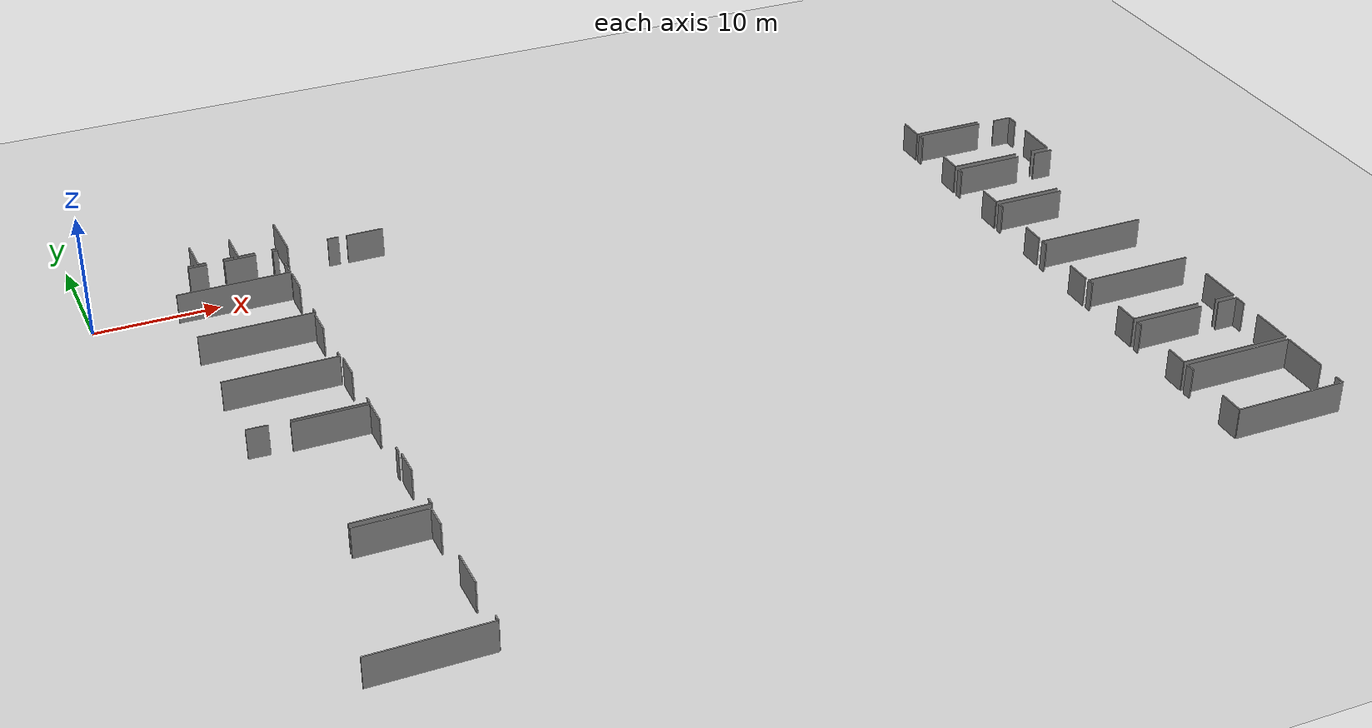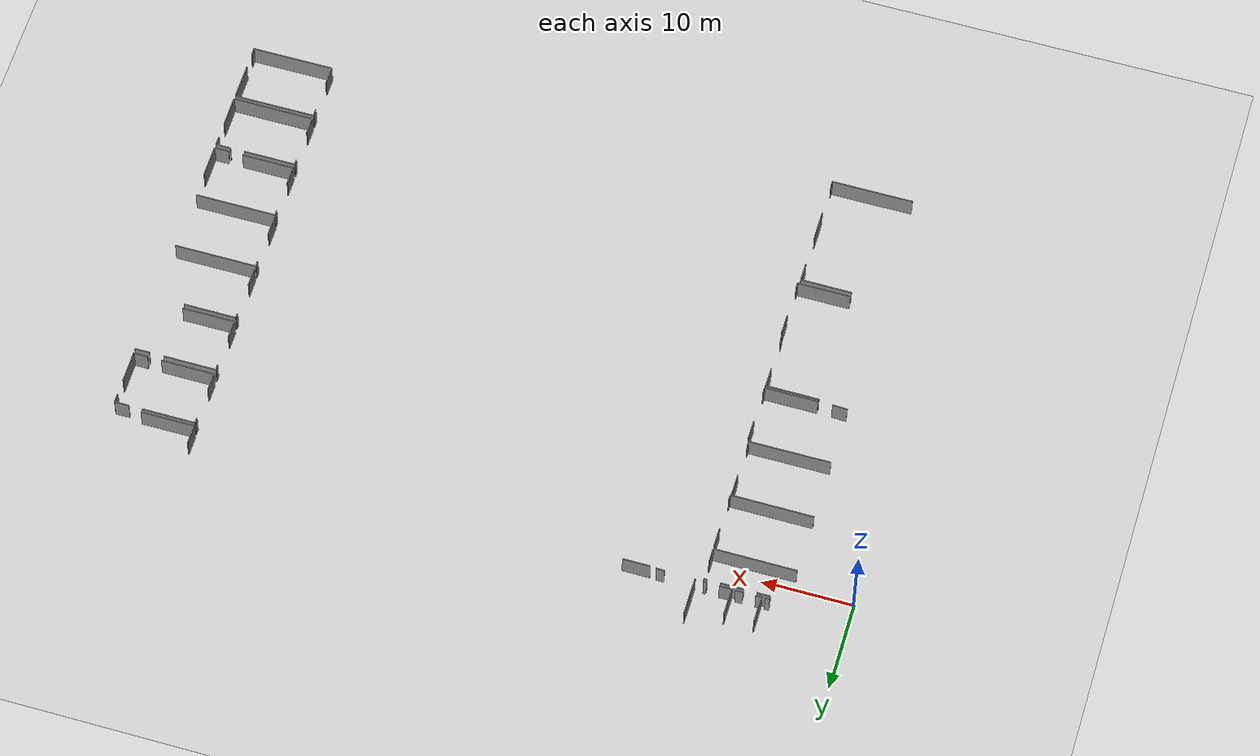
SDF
<sdf version="1.6">
 <world name="default">
  <model name="ground_plane">
   <static>1</static>
   <link name="link">
    <collision name="collision">
     <geometry><plane><normal>0 0 1</normal><size>100 100</size></plane></geometry>
     <surface><friction><ode><mu>100</mu><mu2>50</mu2></ode></friction></surface>
    </collision>
    <visual name="visual">
     <cast_shadows>0</cast_shadows>
     <geometry><plane><normal>0 0 1</normal><size>100 100</size></plane></geometry>
     <material>
      <script><uri>file://media/materials/scripts/gazebo.material</uri><name>Gazebo/Grey</name></script>
     </material>
    </visual>
   </link>
  </model>
  <model name="0510035741_A_40_1_104">
   <static>1</static>
   <link name="Wall_220">
    <collision name="Wall_220_Collision">
     <geometry><box><size>0.914904020167 0.1 2.5</size></box></geometry>
     <pose>0.457452010084 0 1.25 0 0 0</pose>
    </collision>
    <visual name="Wall_220_Visual">
     <pose>0.457452010084 0 1.25 0 0 0</pose>
     <geometry><box><size>0.914904020167 0.1 2.5</size></box></geometry>
     <material>
      <script><uri>file://media/materials/scripts/gazebo.material</uri><name>Gazebo/Grey</name></script>
      <ambient>1 1 1 1</ambient>
     </material>
    </visual>
    <pose>114.620811399 -46.7660225678 0 0 0 3.14159265359</pose>
   </link>
   <link name="Wall_221">
    <collision name="Wall_221_Collision">
     <geometry><box><size>4.16608987751 0.1 2.5</size></box></geometry>
     <pose>2.08304493875 0 1.25 0 0 0</pose>
    </collision>
    <visual name="Wall_221_Visual">
     <pose>2.08304493875 0 1.25 0 0 0</pose>
     <geometry><box><size>4.16608987751 0.1 2.5</size></box></geometry>
     <material>
      <script><uri>file://media/materials/scripts/gazebo.material</uri><name>Gazebo/Grey</name></script>
      <ambient>1 1 1 1</ambient>
     </material>
    </visual>
    <pose>110.407223729 -46.7660225678 0 0 0 1.57079632679</pose>
   </link>
   <link name="Wall_317">
    <collision name="Wall_317_Collision">
     <geometry><box><size>3.02842886894 0.1 2.5</size></box></geometry>
     <pose>1.51421443447 0 1.25 0 0 0</pose>
    </collision>
    <visual name="Wall_317_Visual">
     <pose>1.51421443447 0 1.25 0 0 0</pose>
     <geometry><box><size>3.02842886894 0.1 2.5</size></box></geometry>
     <material>
      <script><uri>file://media/materials/scripts/gazebo.material</uri><name>Gazebo/Grey</name></script>
      <ambient>1 1 1 1</ambient>
     </material>
    </visual>
    <pose>118.298969399 -46.8386662518 0 0 0 3.14142491057</pose>
   </link>
   <link name="Wall_360">
    <collision name="Wall_360_Collision">
     <geometry><box><size>1.46481162807 0.1 2.5</size></box></geometry>
     <pose>0.732405814035 0 1.25 0 0 0</pose>
    </collision>
    <visual name="Wall_360_Visual">
     <pose>0.732405814035 0 1.25 0 0 0</pose>
     <geometry><box><size>1.46481162807 0.1 2.5</size></box></geometry>
     <material>
      <script><uri>file://media/materials/scripts/gazebo.material</uri><name>Gazebo/Grey</name></script>
      <ambient>1 1 1 1</ambient>
     </material>
    </visual>
    <pose>102.339202824 -47.000463548 0 0 0 0.0</pose>
   </link>
   <link name="Wall_361">
    <collision name="Wall_361_Collision">
     <geometry><box><size>2.53821095878 0.1 2.5</size></box></geometry>
     <pose>1.26910547939 0 1.25 0 0 0</pose>
    </collision>
    <visual name="Wall_361_Visual">
     <pose>1.26910547939 0 1.25 0 0 0</pose>
     <geometry><box><size>2.53821095878 0.1 2.5</size></box></geometry>
     <material>
      <script><uri>file://media/materials/scripts/gazebo.material</uri><name>Gazebo/Grey</name></script>
      <ambient>1 1 1 1</ambient>
     </material>
    </visual>
    <pose>105.205834355 -47.000463548 0 0 0 0.0</pose>
   </link>
   <link name="Wall_362">
    <collision name="Wall_362_Collision">
     <geometry><box><size>0.404112242112 0.1 2.5</size></box></geometry>
     <pose>0.202056121056 0 1.25 0 0 0</pose>
    </collision>
    <visual name="Wall_362_Visual">
     <pose>0.202056121056 0 1.25 0 0 0</pose>
     <geometry><box><size>0.404112242112 0.1 2.5</size></box></geometry>
     <material>
      <script><uri>file://media/materials/scripts/gazebo.material</uri><name>Gazebo/Grey</name></script>
      <ambient>1 1 1 1</ambient>
     </material>
    </visual>
    <pose>109.145865215 -47.000463548 0 0 0 0.0</pose>
   </link>
   <link name="Wall_363">
    <collision name="Wall_363_Collision">
     <geometry><box><size>1.64108686127 0.1 2.5</size></box></geometry>
     <pose>0.820543430636 0 1.25 0 0 0</pose>
    </collision>
    <visual name="Wall_363_Visual">
     <pose>0.820543430636 0 1.25 0 0 0</pose>
     <geometry><box><size>1.64108686127 0.1 2.5</size></box></geometry>
     <material>
      <script><uri>file://media/materials/scripts/gazebo.material</uri><name>Gazebo/Grey</name></script>
      <ambient>1 1 1 1</ambient>
     </material>
    </visual>
    <pose>109.549977458 -49.0896044602 0 0 0 -1.57079632679</pose>
   </link>
   <link name="Wall_364">
    <collision name="Wall_364_Collision">
     <geometry><box><size>9.07208094012 0.1 2.5</size></box></geometry>
     <pose>4.53604047006 0 1.25 0 0 0</pose>
    </collision>
    <visual name="Wall_364_Visual">
     <pose>4.53604047006 0 1.25 0 0 0</pose>
     <geometry><box><size>9.07208094012 0.1 2.5</size></box></geometry>
     <material>
      <script><uri>file://media/materials/scripts/gazebo.material</uri><name>Gazebo/Grey</name></script>
      <ambient>1 1 1 1</ambient>
     </material>
    </visual>
    <pose>109.549977458 -50.7306913215 0 0 0 3.14086470904</pose>
   </link>
   <link name="Wall_368">
    <collision name="Wall_368_Collision">
     <geometry><box><size>0.477009925007 0.1 2.5</size></box></geometry>
     <pose>0.238504962503 0 1.25 0 0 0</pose>
    </collision>
    <visual name="Wall_368_Visual">
     <pose>0.238504962503 0 1.25 0 0 0</pose>
     <geometry><box><size>0.477009925007 0.1 2.5</size></box></geometry>
     <material>
      <script><uri>file://media/materials/scripts/gazebo.material</uri><name>Gazebo/Grey</name></script>
      <ambient>1 1 1 1</ambient>
     </material>
    </visual>
    <pose>102.821800725 -46.6921088893 0 0 0 3.14159265359</pose>
   </link>
   <link name="Wall_370">
    <collision name="Wall_370_Collision">
     <geometry><box><size>2.96340510919 0.1 2.5</size></box></geometry>
     <pose>1.48170255459 0 1.25 0 0 0</pose>
    </collision>
    <visual name="Wall_370_Visual">
     <pose>1.48170255459 0 1.25 0 0 0</pose>
     <geometry><box><size>2.96340510919 0.1 2.5</size></box></geometry>
     <material>
      <script><uri>file://media/materials/scripts/gazebo.material</uri><name>Gazebo/Grey</name></script>
      <ambient>1 1 1 1</ambient>
     </material>
    </visual>
    <pose>103.204831059 -46.6669629987 0 0 0 1.57079632679</pose>
   </link>
   <link name="Wall_373">
    <collision name="Wall_373_Collision">
     <geometry><box><size>0.828544395832 0.1 2.5</size></box></geometry>
     <pose>0.414272197916 0 1.25 0 0 0</pose>
    </collision>
    <visual name="Wall_373_Visual">
     <pose>0.414272197916 0 1.25 0 0 0</pose>
     <geometry><box><size>0.828544395832 0.1 2.5</size></box></geometry>
     <material>
      <script><uri>file://media/materials/scripts/gazebo.material</uri><name>Gazebo/Grey</name></script>
      <ambient>1 1 1 1</ambient>
     </material>
    </visual>
    <pose>106.030060769 -46.6481670805 0 0 0 3.14159265359</pose>
   </link>
   <link name="Wall_374">
    <collision name="Wall_374_Collision">
     <geometry><box><size>0.640353128012 0.1 2.5</size></box></geometry>
     <pose>0.320176564006 0 1.25 0 0 0</pose>
    </collision>
    <visual name="Wall_374_Visual">
     <pose>0.320176564006 0 1.25 0 0 0</pose>
     <geometry><box><size>0.640353128012 0.1 2.5</size></box></geometry>
     <material>
      <script><uri>file://media/materials/scripts/gazebo.material</uri><name>Gazebo/Grey</name></script>
      <ambient>1 1 1 1</ambient>
     </material>
    </visual>
    <pose>103.844908275 -46.6481670805 0 0 0 -3.11223601044</pose>
   </link>
   <link name="Wall_375">
    <collision name="Wall_375_Collision">
     <geometry><box><size>2.97940703958 0.1 2.5</size></box></geometry>
     <pose>1.48970351979 0 1.25 0 0 0</pose>
    </collision>
    <visual name="Wall_375_Visual">
     <pose>1.48970351979 0 1.25 0 0 0</pose>
     <geometry><box><size>2.97940703958 0.1 2.5</size></box></geometry>
     <material>
      <script><uri>file://media/materials/scripts/gazebo.material</uri><name>Gazebo/Grey</name></script>
      <ambient>1 1 1 1</ambient>
     </material>
    </visual>
    <pose>106.423251059 -46.6903308971 0 0 0 1.57079632679</pose>
   </link>
   <link name="Wall_378">
    <collision name="Wall_378_Collision">
     <geometry><box><size>0.334262545958 0.1 2.5</size></box></geometry>
     <pose>0.167131272979 0 1.25 0 0 0</pose>
    </collision>
    <visual name="Wall_378_Visual">
     <pose>0.167131272979 0 1.25 0 0 0</pose>
     <geometry><box><size>0.334262545958 0.1 2.5</size></box></geometry>
     <material>
      <script><uri>file://media/materials/scripts/gazebo.material</uri><name>Gazebo/Grey</name></script>
      <ambient>1 1 1 1</ambient>
     </material>
    </visual>
    <pose>109.478857767 -46.6519770639 0 0 0 3.14159265359</pose>
   </link>
   <link name="Wall_379">
    <collision name="Wall_379_Collision">
     <geometry><box><size>1.33683848524 0.1 2.5</size></box></geometry>
     <pose>0.668419242621 0 1.25 0 0 0</pose>
    </collision>
    <visual name="Wall_379_Visual">
     <pose>0.668419242621 0 1.25 0 0 0</pose>
     <geometry><box><size>1.33683848524 0.1 2.5</size></box></geometry>
     <material>
      <script><uri>file://media/materials/scripts/gazebo.material</uri><name>Gazebo/Grey</name></script>
      <ambient>1 1 1 1</ambient>
     </material>
    </visual>
    <pose>107.759539246 -46.6519770639 0 0 0 -3.1128987634</pose>
   </link>
   <link name="Wall_383">
    <collision name="Wall_383_Collision">
     <geometry><box><size>2.16457858408 0.1 2.5</size></box></geometry>
     <pose>1.08228929204 0 1.25 0 0 0</pose>
    </collision>
    <visual name="Wall_383_Visual">
     <pose>1.08228929204 0 1.25 0 0 0</pose>
     <geometry><box><size>2.16457858408 0.1 2.5</size></box></geometry>
     <material>
      <script><uri>file://media/materials/scripts/gazebo.material</uri><name>Gazebo/Grey</name></script>
      <ambient>1 1 1 1</ambient>
     </material>
    </visual>
    <pose>109.57461535 -51.0639378719 0 0 0 -1.57079632679</pose>
   </link>
   <link name="Wall_384">
    <collision name="Wall_384_Collision">
     <geometry><box><size>0.574291501832 0.1 2.5</size></box></geometry>
     <pose>0.287145750916 0 1.25 0 0 0</pose>
    </collision>
    <visual name="Wall_384_Visual">
     <pose>0.287145750916 0 1.25 0 0 0</pose>
     <geometry><box><size>0.574291501832 0.1 2.5</size></box></geometry>
     <material>
      <script><uri>file://media/materials/scripts/gazebo.material</uri><name>Gazebo/Grey</name></script>
      <ambient>1 1 1 1</ambient>
     </material>
    </visual>
    <pose>109.57461535 -56.8728926029 0 0 0 -1.57079632679</pose>
   </link>
   <link name="Wall_385">
    <collision name="Wall_385_Collision">
     <geometry><box><size>9.10993587634 0.1 2.5</size></box></geometry>
     <pose>4.55496793817 0 1.25 0 0 0</pose>
    </collision>
    <visual name="Wall_385_Visual">
     <pose>4.55496793817 0 1.25 0 0 0</pose>
     <geometry><box><size>9.10993587634 0.1 2.5</size></box></geometry>
     <material>
      <script><uri>file://media/materials/scripts/gazebo.material</uri><name>Gazebo/Grey</name></script>
      <ambient>1 1 1 1</ambient>
     </material>
    </visual>
    <pose>109.57461535 -57.4471841047 0 0 0 3.14000340606</pose>
   </link>
   <link name="Wall_389">
    <collision name="Wall_389_Collision">
     <geometry><box><size>2.14248068021 0.1 2.5</size></box></geometry>
     <pose>1.0712403401 0 1.25 0 0 0</pose>
    </collision>
    <visual name="Wall_389_Visual">
     <pose>1.0712403401 0 1.25 0 0 0</pose>
     <geometry><box><size>2.14248068021 0.1 2.5</size></box></geometry>
     <material>
      <script><uri>file://media/materials/scripts/gazebo.material</uri><name>Gazebo/Grey</name></script>
      <ambient>1 1 1 1</ambient>
     </material>
    </visual>
    <pose>109.464125831 -57.8446923756 0 0 0 -1.57079632679</pose>
   </link>
   <link name="Wall_390">
    <collision name="Wall_390_Collision">
     <geometry><box><size>0.551177602377 0.1 2.5</size></box></geometry>
     <pose>0.275588801189 0 1.25 0 0 0</pose>
    </collision>
    <visual name="Wall_390_Visual">
     <pose>0.275588801189 0 1.25 0 0 0</pose>
     <geometry><box><size>0.551177602377 0.1 2.5</size></box></geometry>
     <material>
      <script><uri>file://media/materials/scripts/gazebo.material</uri><name>Gazebo/Grey</name></script>
      <ambient>1 1 1 1</ambient>
     </material>
    </visual>
    <pose>109.464125831 -63.7123208514 0 0 0 -1.57079632679</pose>
   </link>
   <link name="Wall_391">
    <collision name="Wall_391_Collision">
     <geometry><box><size>8.98219266717 0.1 2.5</size></box></geometry>
     <pose>4.49109633358 0 1.25 0 0 0</pose>
    </collision>
    <visual name="Wall_391_Visual">
     <pose>4.49109633358 0 1.25 0 0 0</pose>
     <geometry><box><size>8.98219266717 0.1 2.5</size></box></geometry>
     <material>
      <script><uri>file://media/materials/scripts/gazebo.material</uri><name>Gazebo/Grey</name></script>
      <ambient>1 1 1 1</ambient>
     </material>
    </visual>
    <pose>109.464125831 -64.2634984538 0 0 0 -3.13901934818</pose>
   </link>
   <link name="Wall_395">
    <collision name="Wall_395_Collision">
     <geometry><box><size>2.26617814213 0.1 2.5</size></box></geometry>
     <pose>1.13308907106 0 1.25 0 0 0</pose>
    </collision>
    <visual name="Wall_395_Visual">
     <pose>1.13308907106 0 1.25 0 0 0</pose>
     <geometry><box><size>2.26617814213 0.1 2.5</size></box></geometry>
     <material>
      <script><uri>file://media/materials/scripts/gazebo.material</uri><name>Gazebo/Grey</name></script>
      <ambient>1 1 1 1</ambient>
     </material>
    </visual>
    <pose>109.600523238 -64.5909030296 0 0 0 -1.57079632679</pose>
   </link>
   <link name="Wall_396">
    <collision name="Wall_396_Collision">
     <geometry><box><size>0.614423327259 0.1 2.5</size></box></geometry>
     <pose>0.307211663629 0 1.25 0 0 0</pose>
    </collision>
    <visual name="Wall_396_Visual">
     <pose>0.307211663629 0 1.25 0 0 0</pose>
     <geometry><box><size>0.614423327259 0.1 2.5</size></box></geometry>
     <material>
      <script><uri>file://media/materials/scripts/gazebo.material</uri><name>Gazebo/Grey</name></script>
      <ambient>1 1 1 1</ambient>
     </material>
    </visual>
    <pose>109.600523238 -70.5062832977 0 0 0 -1.57079632679</pose>
   </link>
   <link name="Wall_397">
    <collision name="Wall_397_Collision">
     <geometry><box><size>5.87220045593 0.1 2.5</size></box></geometry>
     <pose>2.93610022796 0 1.25 0 0 0</pose>
    </collision>
    <visual name="Wall_397_Visual">
     <pose>2.93610022796 0 1.25 0 0 0</pose>
     <geometry><box><size>5.87220045593 0.1 2.5</size></box></geometry>
     <material>
      <script><uri>file://media/materials/scripts/gazebo.material</uri><name>Gazebo/Grey</name></script>
      <ambient>1 1 1 1</ambient>
     </material>
    </visual>
    <pose>109.600523238 -71.1207066249 0 0 0 3.14159265359</pose>
   </link>
   <link name="Wall_398">
    <collision name="Wall_398_Collision">
     <geometry><box><size>1.64725787728 0.1 2.5</size></box></geometry>
     <pose>0.823628938642 0 1.25 0 0 0</pose>
    </collision>
    <visual name="Wall_398_Visual">
     <pose>0.823628938642 0 1.25 0 0 0</pose>
     <geometry><box><size>1.64725787728 0.1 2.5</size></box></geometry>
     <material>
      <script><uri>file://media/materials/scripts/gazebo.material</uri><name>Gazebo/Grey</name></script>
      <ambient>1 1 1 1</ambient>
     </material>
    </visual>
    <pose>102.131431728 -71.1207066249 0 0 0 3.10519460209</pose>
   </link>
   <link name="Wall_400">
    <collision name="Wall_400_Collision">
     <geometry><box><size>0.551939599063 0.1 2.5</size></box></geometry>
     <pose>0.275969799531 0 1.25 0 0 0</pose>
    </collision>
    <visual name="Wall_400_Visual">
     <pose>0.275969799531 0 1.25 0 0 0</pose>
     <geometry><box><size>0.551939599063 0.1 2.5</size></box></geometry>
     <material>
      <script><uri>file://media/materials/scripts/gazebo.material</uri><name>Gazebo/Grey</name></script>
      <ambient>1 1 1 1</ambient>
     </material>
    </visual>
    <pose>109.552517447 -77.9436249452 0 0 0 1.57079632679</pose>
   </link>
   <link name="Wall_401">
    <collision name="Wall_401_Collision">
     <geometry><box><size>2.23087229571 0.1 2.5</size></box></geometry>
     <pose>1.11543614785 0 1.25 0 0 0</pose>
    </collision>
    <visual name="Wall_401_Visual">
     <pose>1.11543614785 0 1.25 0 0 0</pose>
     <geometry><box><size>2.23087229571 0.1 2.5</size></box></geometry>
     <material>
      <script><uri>file://media/materials/scripts/gazebo.material</uri><name>Gazebo/Grey</name></script>
      <ambient>1 1 1 1</ambient>
     </material>
    </visual>
    <pose>109.552517447 -73.614721776 0 0 0 1.57079632679</pose>
   </link>
   <link name="Wall_402">
    <collision name="Wall_402_Collision">
     <geometry><box><size>5.87499444377 0.1 2.5</size></box></geometry>
     <pose>2.93749722189 0 1.25 0 0 0</pose>
    </collision>
    <visual name="Wall_402_Visual">
     <pose>2.93749722189 0 1.25 0 0 0</pose>
     <geometry><box><size>5.87499444377 0.1 2.5</size></box></geometry>
     <material>
      <script><uri>file://media/materials/scripts/gazebo.material</uri><name>Gazebo/Grey</name></script>
      <ambient>1 1 1 1</ambient>
     </material>
    </visual>
    <pose>109.552517447 -71.3838494803 0 0 0 3.14159265359</pose>
   </link>
   <link name="Wall_409">
    <collision name="Wall_409_Collision">
     <geometry><box><size>2.18642248906 0.1 2.5</size></box></geometry>
     <pose>1.09321124453 0 1.25 0 0 0</pose>
    </collision>
    <visual name="Wall_409_Visual">
     <pose>1.09321124453 0 1.25 0 0 0</pose>
     <geometry><box><size>2.18642248906 0.1 2.5</size></box></geometry>
     <material>
      <script><uri>file://media/materials/scripts/gazebo.material</uri><name>Gazebo/Grey</name></script>
      <ambient>1 1 1 1</ambient>
     </material>
    </visual>
    <pose>109.663006966 -78.3192893111 0 0 0 -1.57079632679</pose>
   </link>
   <link name="Wall_410">
    <collision name="Wall_410_Collision">
     <geometry><box><size>0.61848730958 0.1 2.5</size></box></geometry>
     <pose>0.30924365479 0 1.25 0 0 0</pose>
    </collision>
    <visual name="Wall_410_Visual">
     <pose>0.30924365479 0 1.25 0 0 0</pose>
     <geometry><box><size>0.61848730958 0.1 2.5</size></box></geometry>
     <material>
      <script><uri>file://media/materials/scripts/gazebo.material</uri><name>Gazebo/Grey</name></script>
      <ambient>1 1 1 1</ambient>
     </material>
    </visual>
    <pose>109.663006966 -84.1279900432 0 0 0 -1.57079632679</pose>
   </link>
   <link name="Wall_411">
    <collision name="Wall_411_Collision">
     <geometry><box><size>5.84349858078 0.1 2.5</size></box></geometry>
     <pose>2.92174929039 0 1.25 0 0 0</pose>
    </collision>
    <visual name="Wall_411_Visual">
     <pose>2.92174929039 0 1.25 0 0 0</pose>
     <geometry><box><size>5.84349858078 0.1 2.5</size></box></geometry>
     <material>
      <script><uri>file://media/materials/scripts/gazebo.material</uri><name>Gazebo/Grey</name></script>
      <ambient>1 1 1 1</ambient>
     </material>
    </visual>
    <pose>109.663006966 -84.7464773528 0 0 0 3.14159265359</pose>
   </link>
   <link name="Wall_416">
    <collision name="Wall_416_Collision">
     <geometry><box><size>5.66163537189 0.1 2.5</size></box></geometry>
     <pose>2.83081768594 0 1.25 0 0 0</pose>
    </collision>
    <visual name="Wall_416_Visual">
     <pose>2.83081768594 0 1.25 0 0 0</pose>
     <geometry><box><size>5.66163537189 0.1 2.5</size></box></geometry>
     <material>
      <script><uri>file://media/materials/scripts/gazebo.material</uri><name>Gazebo/Grey</name></script>
      <ambient>1 1 1 1</ambient>
     </material>
    </visual>
    <pose>103.792076504 -85.2565071342 0 0 0 0.0</pose>
   </link>
   <link name="Wall_417">
    <collision name="Wall_417_Collision">
     <geometry><box><size>2.03732513764 0.1 2.5</size></box></geometry>
     <pose>1.01866256882 0 1.25 0 0 0</pose>
    </collision>
    <visual name="Wall_417_Visual">
     <pose>1.01866256882 0 1.25 0 0 0</pose>
     <geometry><box><size>2.03732513764 0.1 2.5</size></box></geometry>
     <material>
      <script><uri>file://media/materials/scripts/gazebo.material</uri><name>Gazebo/Grey</name></script>
      <ambient>1 1 1 1</ambient>
     </material>
    </visual>
    <pose>109.453711876 -85.2565071342 0 0 0 -1.57079632679</pose>
   </link>
   <link name="Wall_418">
    <collision name="Wall_418_Collision">
     <geometry><box><size>3.17778017666 0.1 2.5</size></box></geometry>
     <pose>1.58889008833 0 1.25 0 0 0</pose>
    </collision>
    <visual name="Wall_418_Visual">
     <pose>1.58889008833 0 1.25 0 0 0</pose>
     <geometry><box><size>3.17778017666 0.1 2.5</size></box></geometry>
     <material>
      <script><uri>file://media/materials/scripts/gazebo.material</uri><name>Gazebo/Grey</name></script>
      <ambient>1 1 1 1</ambient>
     </material>
    </visual>
    <pose>109.453711876 -90.9750382586 0 0 0 -1.57079632679</pose>
   </link>
   <link name="Wall_419">
    <collision name="Wall_419_Collision">
     <geometry><box><size>0.522729726126 0.1 2.5</size></box></geometry>
     <pose>0.261364863063 0 1.25 0 0 0</pose>
    </collision>
    <visual name="Wall_419_Visual">
     <pose>0.261364863063 0 1.25 0 0 0</pose>
     <geometry><box><size>0.522729726126 0.1 2.5</size></box></geometry>
     <material>
      <script><uri>file://media/materials/scripts/gazebo.material</uri><name>Gazebo/Grey</name></script>
      <ambient>1 1 1 1</ambient>
     </material>
    </visual>
    <pose>109.453711876 -97.8416443888 0 0 0 -1.57079632679</pose>
   </link>
   <link name="Wall_420">
    <collision name="Wall_420_Collision">
     <geometry><box><size>9.01446729278 0.1 2.5</size></box></geometry>
     <pose>4.50723364639 0 1.25 0 0 0</pose>
    </collision>
    <visual name="Wall_420_Visual">
     <pose>4.50723364639 0 1.25 0 0 0</pose>
     <geometry><box><size>9.01446729278 0.1 2.5</size></box></geometry>
     <material>
      <script><uri>file://media/materials/scripts/gazebo.material</uri><name>Gazebo/Grey</name></script>
      <ambient>1 1 1 1</ambient>
     </material>
    </visual>
    <pose>109.453711876 -98.364374115 0 0 0 -3.13838049219</pose>
   </link>
   <link name="Wall_476">
    <collision name="Wall_476_Collision">
     <geometry><box><size>2.20750439736 0.1 2.5</size></box></geometry>
     <pose>1.10375219868 0 1.25 0 0 0</pose>
    </collision>
    <visual name="Wall_476_Visual">
     <pose>1.10375219868 0 1.25 0 0 0</pose>
     <geometry><box><size>2.20750439736 0.1 2.5</size></box></geometry>
     <material>
      <script><uri>file://media/materials/scripts/gazebo.material</uri><name>Gazebo/Grey</name></script>
      <ambient>1 1 1 1</ambient>
     </material>
    </visual>
    <pose>166.1609972 -49.2204138912 0 0 0 1.57079632679</pose>
   </link>
   <link name="Wall_482">
    <collision name="Wall_482_Collision">
     <geometry><box><size>5.96187784342 0.1 2.5</size></box></geometry>
     <pose>2.98093892171 0 1.25 0 0 0</pose>
    </collision>
    <visual name="Wall_482_Visual">
     <pose>2.98093892171 0 1.25 0 0 0</pose>
     <geometry><box><size>5.96187784342 0.1 2.5</size></box></geometry>
     <material>
      <script><uri>file://media/materials/scripts/gazebo.material</uri><name>Gazebo/Grey</name></script>
      <ambient>1 1 1 1</ambient>
     </material>
    </visual>
    <pose>172.122859266 -49.2066979509 0 0 0 -3.13929204415</pose>
   </link>
   <link name="Wall_483">
    <collision name="Wall_483_Collision">
     <geometry><box><size>2.0078612658 0.1 2.5</size></box></geometry>
     <pose>1.0039306329 0 1.25 0 0 0</pose>
    </collision>
    <visual name="Wall_483_Visual">
     <pose>1.0039306329 0 1.25 0 0 0</pose>
     <geometry><box><size>2.0078612658 0.1 2.5</size></box></geometry>
     <material>
      <script><uri>file://media/materials/scripts/gazebo.material</uri><name>Gazebo/Grey</name></script>
      <ambient>1 1 1 1</ambient>
     </material>
    </visual>
    <pose>166.187413085 -55.8673109772 0 0 0 1.57079632679</pose>
   </link>
   <link name="Wall_484">
    <collision name="Wall_484_Collision">
     <geometry><box><size>0.606295362615 0.1 2.5</size></box></geometry>
     <pose>0.303147681308 0 1.25 0 0 0</pose>
    </collision>
    <visual name="Wall_484_Visual">
     <pose>0.303147681308 0 1.25 0 0 0</pose>
     <geometry><box><size>0.606295362615 0.1 2.5</size></box></geometry>
     <material>
      <script><uri>file://media/materials/scripts/gazebo.material</uri><name>Gazebo/Grey</name></script>
      <ambient>1 1 1 1</ambient>
     </material>
    </visual>
    <pose>166.187413085 -50.184593697 0 0 0 1.57079632679</pose>
   </link>
   <link name="Wall_485">
    <collision name="Wall_485_Collision">
     <geometry><box><size>5.89734634654 0.1 2.5</size></box></geometry>
     <pose>2.94867317327 0 1.25 0 0 0</pose>
    </collision>
    <visual name="Wall_485_Visual">
     <pose>2.94867317327 0 1.25 0 0 0</pose>
     <geometry><box><size>5.89734634654 0.1 2.5</size></box></geometry>
     <material>
      <script><uri>file://media/materials/scripts/gazebo.material</uri><name>Gazebo/Grey</name></script>
      <ambient>1 1 1 1</ambient>
     </material>
    </visual>
    <pose>166.187413085 -49.5782983344 0 0 0 0.0</pose>
   </link>
   <link name="Wall_486">
    <collision name="Wall_486_Collision">
     <geometry><box><size>1.60247902922 0.1 2.5</size></box></geometry>
     <pose>0.801239514608 0 1.25 0 0 0</pose>
    </collision>
    <visual name="Wall_486_Visual">
     <pose>0.801239514608 0 1.25 0 0 0</pose>
     <geometry><box><size>1.60247902922 0.1 2.5</size></box></geometry>
     <material>
      <script><uri>file://media/materials/scripts/gazebo.material</uri><name>Gazebo/Grey</name></script>
      <ambient>1 1 1 1</ambient>
     </material>
    </visual>
    <pose>173.587924893 -49.5782983344 0 0 0 0.0</pose>
   </link>
   <link name="Wall_487">
    <collision name="Wall_487_Collision">
     <geometry><box><size>1.00786761578 0.1 2.5</size></box></geometry>
     <pose>0.503933807888 0 1.25 0 0 0</pose>
    </collision>
    <visual name="Wall_487_Visual">
     <pose>0.503933807888 0 1.25 0 0 0</pose>
     <geometry><box><size>1.00786761578 0.1 2.5</size></box></geometry>
     <material>
      <script><uri>file://media/materials/scripts/gazebo.material</uri><name>Gazebo/Grey</name></script>
      <ambient>1 1 1 1</ambient>
     </material>
    </visual>
    <pose>175.190403922 -49.5782983344 0 0 0 -1.57079632679</pose>
   </link>
   <link name="Wall_488">
    <collision name="Wall_488_Collision">
     <geometry><box><size>3.54074459776 0.1 2.5</size></box></geometry>
     <pose>1.77037229888 0 1.25 0 0 0</pose>
    </collision>
    <visual name="Wall_488_Visual">
     <pose>1.77037229888 0 1.25 0 0 0</pose>
     <geometry><box><size>3.54074459776 0.1 2.5</size></box></geometry>
     <material>
      <script><uri>file://media/materials/scripts/gazebo.material</uri><name>Gazebo/Grey</name></script>
      <ambient>1 1 1 1</ambient>
     </material>
    </visual>
    <pose>175.190403922 -52.3390123253 0 0 0 -1.57079632679</pose>
   </link>
   <link name="Wall_489">
    <collision name="Wall_489_Collision">
     <geometry><box><size>1.55498123583 0.1 2.5</size></box></geometry>
     <pose>0.777490617916 0 1.25 0 0 0</pose>
    </collision>
    <visual name="Wall_489_Visual">
     <pose>0.777490617916 0 1.25 0 0 0</pose>
     <geometry><box><size>1.55498123583 0.1 2.5</size></box></geometry>
     <material>
      <script><uri>file://media/materials/scripts/gazebo.material</uri><name>Gazebo/Grey</name></script>
      <ambient>1 1 1 1</ambient>
     </material>
    </visual>
    <pose>175.190403922 -55.8797569231 0 0 0 3.14159265359</pose>
   </link>
   <link name="Wall_490">
    <collision name="Wall_490_Collision">
     <geometry><box><size>5.91107538955 0.1 2.5</size></box></geometry>
     <pose>2.95553769477 0 1.25 0 0 0</pose>
    </collision>
    <visual name="Wall_490_Visual">
     <pose>2.95553769477 0 1.25 0 0 0</pose>
     <geometry><box><size>5.91107538955 0.1 2.5</size></box></geometry>
     <material>
      <script><uri>file://media/materials/scripts/gazebo.material</uri><name>Gazebo/Grey</name></script>
      <ambient>1 1 1 1</ambient>
     </material>
    </visual>
    <pose>172.098475372 -55.8797569231 0 0 0 3.13948712215</pose>
   </link>
   <link name="Wall_491">
    <collision name="Wall_491_Collision">
     <geometry><box><size>2.03580114427 0.1 2.5</size></box></geometry>
     <pose>1.01790057213 0 1.25 0 0 0</pose>
    </collision>
    <visual name="Wall_491_Visual">
     <pose>1.01790057213 0 1.25 0 0 0</pose>
     <geometry><box><size>2.03580114427 0.1 2.5</size></box></geometry>
     <material>
      <script><uri>file://media/materials/scripts/gazebo.material</uri><name>Gazebo/Grey</name></script>
      <ambient>1 1 1 1</ambient>
     </material>
    </visual>
    <pose>166.162267194 -62.727821134 0 0 0 1.57079632679</pose>
   </link>
   <link name="Wall_492">
    <collision name="Wall_492_Collision">
     <geometry><box><size>0.576323492993 0.1 2.5</size></box></geometry>
     <pose>0.288161746496 0 1.25 0 0 0</pose>
    </collision>
    <visual name="Wall_492_Visual">
     <pose>0.288161746496 0 1.25 0 0 0</pose>
     <geometry><box><size>0.576323492993 0.1 2.5</size></box></geometry>
     <material>
      <script><uri>file://media/materials/scripts/gazebo.material</uri><name>Gazebo/Grey</name></script>
      <ambient>1 1 1 1</ambient>
     </material>
    </visual>
    <pose>166.162267194 -57.0044640306 0 0 0 1.57079632679</pose>
   </link>
   <link name="Wall_493">
    <collision name="Wall_493_Collision">
     <geometry><box><size>5.83664061061 0.1 2.5</size></box></geometry>
     <pose>2.91832030531 0 1.25 0 0 0</pose>
    </collision>
    <visual name="Wall_493_Visual">
     <pose>2.91832030531 0 1.25 0 0 0</pose>
     <geometry><box><size>5.83664061061 0.1 2.5</size></box></geometry>
     <material>
      <script><uri>file://media/materials/scripts/gazebo.material</uri><name>Gazebo/Grey</name></script>
      <ambient>1 1 1 1</ambient>
     </material>
    </visual>
    <pose>166.162267194 -56.4281405376 0 0 0 0.0</pose>
   </link>
   <link name="Wall_494">
    <collision name="Wall_494_Collision">
     <geometry><box><size>1.65175481487 0.1 2.5</size></box></geometry>
     <pose>0.825877407433 0 1.25 0 0 0</pose>
    </collision>
    <visual name="Wall_494_Visual">
     <pose>0.825877407433 0 1.25 0 0 0</pose>
     <geometry><box><size>1.65175481487 0.1 2.5</size></box></geometry>
     <material>
      <script><uri>file://media/materials/scripts/gazebo.material</uri><name>Gazebo/Grey</name></script>
      <ambient>1 1 1 1</ambient>
     </material>
    </visual>
    <pose>173.614086779 -56.4281405376 0 0 0 0.0</pose>
   </link>
   <link name="Wall_497">
    <collision name="Wall_497_Collision">
     <geometry><box><size>5.83615455041 0.1 2.5</size></box></geometry>
     <pose>2.9180772752 0 1.25 0 0 0</pose>
    </collision>
    <visual name="Wall_497_Visual">
     <pose>2.9180772752 0 1.25 0 0 0</pose>
     <geometry><box><size>5.83615455041 0.1 2.5</size></box></geometry>
     <material>
      <script><uri>file://media/materials/scripts/gazebo.material</uri><name>Gazebo/Grey</name></script>
      <ambient>1 1 1 1</ambient>
     </material>
    </visual>
    <pose>171.998399807 -62.7118192036 0 0 0 -3.13885078815</pose>
   </link>
   <link name="Wall_498">
    <collision name="Wall_498_Collision">
     <geometry><box><size>2.01649722824 0.1 2.5</size></box></geometry>
     <pose>1.00824861412 0 1.25 0 0 0</pose>
    </collision>
    <visual name="Wall_498_Visual">
     <pose>1.00824861412 0 1.25 0 0 0</pose>
     <geometry><box><size>2.01649722824 0.1 2.5</size></box></geometry>
     <material>
      <script><uri>file://media/materials/scripts/gazebo.material</uri><name>Gazebo/Grey</name></script>
      <ambient>1 1 1 1</ambient>
     </material>
    </visual>
    <pose>166.162267194 -69.5459134753 0 0 0 1.57079632679</pose>
   </link>
   <link name="Wall_499">
    <collision name="Wall_499_Collision">
     <geometry><box><size>0.576323492993 0.1 2.5</size></box></geometry>
     <pose>0.288161746496 0 1.25 0 0 0</pose>
    </collision>
    <visual name="Wall_499_Visual">
     <pose>0.288161746496 0 1.25 0 0 0</pose>
     <geometry><box><size>0.576323492993 0.1 2.5</size></box></geometry>
     <material>
      <script><uri>file://media/materials/scripts/gazebo.material</uri><name>Gazebo/Grey</name></script>
      <ambient>1 1 1 1</ambient>
     </material>
    </visual>
    <pose>166.162267194 -63.7842025387 0 0 0 1.57079632679</pose>
   </link>
   <link name="Wall_500">
    <collision name="Wall_500_Collision">
     <geometry><box><size>5.85772251891 0.1 2.5</size></box></geometry>
     <pose>2.92886125945 0 1.25 0 0 0</pose>
    </collision>
    <visual name="Wall_500_Visual">
     <pose>2.92886125945 0 1.25 0 0 0</pose>
     <geometry><box><size>5.85772251891 0.1 2.5</size></box></geometry>
     <material>
      <script><uri>file://media/materials/scripts/gazebo.material</uri><name>Gazebo/Grey</name></script>
      <ambient>1 1 1 1</ambient>
     </material>
    </visual>
    <pose>166.162267194 -63.2078790457 0 0 0 0.0</pose>
   </link>
   <link name="Wall_503">
    <collision name="Wall_503_Collision">
     <geometry><box><size>2.18642248906 0.1 2.5</size></box></geometry>
     <pose>1.09321124453 0 1.25 0 0 0</pose>
    </collision>
    <visual name="Wall_503_Visual">
     <pose>1.09321124453 0 1.25 0 0 0</pose>
     <geometry><box><size>2.18642248906 0.1 2.5</size></box></geometry>
     <material>
      <script><uri>file://media/materials/scripts/gazebo.material</uri><name>Gazebo/Grey</name></script>
      <ambient>1 1 1 1</ambient>
     </material>
    </visual>
    <pose>166.139153295 -76.5080231901 0 0 0 1.57079632679</pose>
   </link>
   <link name="Wall_504">
    <collision name="Wall_504_Collision">
     <geometry><box><size>0.640585213454 0.1 2.5</size></box></geometry>
     <pose>0.320292606727 0 1.25 0 0 0</pose>
    </collision>
    <visual name="Wall_504_Visual">
     <pose>0.320292606727 0 1.25 0 0 0</pose>
     <geometry><box><size>0.640585213454 0.1 2.5</size></box></geometry>
     <material>
      <script><uri>file://media/materials/scripts/gazebo.material</uri><name>Gazebo/Grey</name></script>
      <ambient>1 1 1 1</ambient>
     </material>
    </visual>
    <pose>166.139153295 -70.6551266502 0 0 0 1.57079632679</pose>
   </link>
   <link name="Wall_505">
    <collision name="Wall_505_Collision">
     <geometry><box><size>9.1218623199 0.1 2.5</size></box></geometry>
     <pose>4.56093115995 0 1.25 0 0 0</pose>
    </collision>
    <visual name="Wall_505_Visual">
     <pose>4.56093115995 0 1.25 0 0 0</pose>
     <geometry><box><size>9.1218623199 0.1 2.5</size></box></geometry>
     <material>
      <script><uri>file://media/materials/scripts/gazebo.material</uri><name>Gazebo/Grey</name></script>
      <ambient>1 1 1 1</ambient>
     </material>
    </visual>
    <pose>166.139153295 -70.0145414367 0 0 0 0.0</pose>
   </link>
   <link name="Wall_509">
    <collision name="Wall_509_Collision">
     <geometry><box><size>2.07085299179 0.1 2.5</size></box></geometry>
     <pose>1.03542649589 0 1.25 0 0 0</pose>
    </collision>
    <visual name="Wall_509_Visual">
     <pose>1.03542649589 0 1.25 0 0 0</pose>
     <geometry><box><size>2.07085299179 0.1 2.5</size></box></geometry>
     <material>
      <script><uri>file://media/materials/scripts/gazebo.material</uri><name>Gazebo/Grey</name></script>
      <ambient>1 1 1 1</ambient>
     </material>
    </visual>
    <pose>166.186397089 -83.1854001435 0 0 0 1.57079632679</pose>
   </link>
   <link name="Wall_510">
    <collision name="Wall_510_Collision">
     <geometry><box><size>0.584451457636 0.1 2.5</size></box></geometry>
     <pose>0.292225728818 0 1.25 0 0 0</pose>
    </collision>
    <visual name="Wall_510_Visual">
     <pose>0.292225728818 0 1.25 0 0 0</pose>
     <geometry><box><size>0.584451457636 0.1 2.5</size></box></geometry>
     <material>
      <script><uri>file://media/materials/scripts/gazebo.material</uri><name>Gazebo/Grey</name></script>
      <ambient>1 1 1 1</ambient>
     </material>
    </visual>
    <pose>166.186397089 -77.4069252799 0 0 0 1.57079632679</pose>
   </link>
   <link name="Wall_511">
    <collision name="Wall_511_Collision">
     <geometry><box><size>9.01848476959 0.1 2.5</size></box></geometry>
     <pose>4.5092423848 0 1.25 0 0 0</pose>
    </collision>
    <visual name="Wall_511_Visual">
     <pose>4.5092423848 0 1.25 0 0 0</pose>
     <geometry><box><size>9.01848476959 0.1 2.5</size></box></geometry>
     <material>
      <script><uri>file://media/materials/scripts/gazebo.material</uri><name>Gazebo/Grey</name></script>
      <ambient>1 1 1 1</ambient>
     </material>
    </visual>
    <pose>166.186397089 -76.8224738222 0 0 0 0.0</pose>
   </link>
   <link name="Wall_513">
    <collision name="Wall_513_Collision">
     <geometry><box><size>3.61770626298 0.1 2.5</size></box></geometry>
     <pose>1.80885313149 0 1.25 0 0 0</pose>
    </collision>
    <visual name="Wall_513_Visual">
     <pose>1.80885313149 0 1.25 0 0 0</pose>
     <geometry><box><size>3.61770626298 0.1 2.5</size></box></geometry>
     <material>
      <script><uri>file://media/materials/scripts/gazebo.material</uri><name>Gazebo/Grey</name></script>
      <ambient>1 1 1 1</ambient>
     </material>
    </visual>
    <pose>175.204881859 -79.5836958109 0 0 0 -1.57079632679</pose>
   </link>
   <link name="Wall_514">
    <collision name="Wall_514_Collision">
     <geometry><box><size>1.6291489132 0.1 2.5</size></box></geometry>
     <pose>0.814574456601 0 1.25 0 0 0</pose>
    </collision>
    <visual name="Wall_514_Visual">
     <pose>0.814574456601 0 1.25 0 0 0</pose>
     <geometry><box><size>1.6291489132 0.1 2.5</size></box></geometry>
     <material>
      <script><uri>file://media/materials/scripts/gazebo.material</uri><name>Gazebo/Grey</name></script>
      <ambient>1 1 1 1</ambient>
     </material>
    </visual>
    <pose>175.204881859 -83.2014020739 0 0 0 3.14159265359</pose>
   </link>
   <link name="Wall_515">
    <collision name="Wall_515_Collision">
     <geometry><box><size>5.80796077954 0.1 2.5</size></box></geometry>
     <pose>2.90398038977 0 1.25 0 0 0</pose>
    </collision>
    <visual name="Wall_515_Visual">
     <pose>2.90398038977 0 1.25 0 0 0</pose>
     <geometry><box><size>5.80796077954 0.1 2.5</size></box></geometry>
     <material>
      <script><uri>file://media/materials/scripts/gazebo.material</uri><name>Gazebo/Grey</name></script>
      <ambient>1 1 1 1</ambient>
     </material>
    </visual>
    <pose>171.994335825 -83.2014020739 0 0 0 3.13883747819</pose>
   </link>
   <link name="Wall_516">
    <collision name="Wall_516_Collision">
     <geometry><box><size>1.92073964478 0.1 2.5</size></box></geometry>
     <pose>0.960369822391 0 1.25 0 0 0</pose>
    </collision>
    <visual name="Wall_516_Visual">
     <pose>0.960369822391 0 1.25 0 0 0</pose>
     <geometry><box><size>1.92073964478 0.1 2.5</size></box></geometry>
     <material>
      <script><uri>file://media/materials/scripts/gazebo.material</uri><name>Gazebo/Grey</name></script>
      <ambient>1 1 1 1</ambient>
     </material>
    </visual>
    <pose>166.169633162 -89.8993529378 0 0 0 1.57079632679</pose>
   </link>
   <link name="Wall_517">
    <collision name="Wall_517_Collision">
     <geometry><box><size>0.567941529454 0.1 2.5</size></box></geometry>
     <pose>0.283970764727 0 1.25 0 0 0</pose>
    </collision>
    <visual name="Wall_517_Visual">
     <pose>0.283970764727 0 1.25 0 0 0</pose>
     <geometry><box><size>0.567941529454 0.1 2.5</size></box></geometry>
     <material>
      <script><uri>file://media/materials/scripts/gazebo.material</uri><name>Gazebo/Grey</name></script>
      <ambient>1 1 1 1</ambient>
     </material>
    </visual>
    <pose>166.169633162 -84.2377175659 0 0 0 1.57079632679</pose>
   </link>
   <link name="Wall_518">
    <collision name="Wall_518_Collision">
     <geometry><box><size>5.79523879071 0.1 2.5</size></box></geometry>
     <pose>2.89761939536 0 1.25 0 0 0</pose>
    </collision>
    <visual name="Wall_518_Visual">
     <pose>2.89761939536 0 1.25 0 0 0</pose>
     <geometry><box><size>5.79523879071 0.1 2.5</size></box></geometry>
     <material>
      <script><uri>file://media/materials/scripts/gazebo.material</uri><name>Gazebo/Grey</name></script>
      <ambient>1 1 1 1</ambient>
     </material>
    </visual>
    <pose>166.169633162 -83.6697760365 0 0 0 0.0</pose>
   </link>
   <link name="Wall_519">
    <collision name="Wall_519_Collision">
     <geometry><box><size>1.670804732 0.1 2.5</size></box></geometry>
     <pose>0.835402366 0 1.25 0 0 0</pose>
    </collision>
    <visual name="Wall_519_Visual">
     <pose>0.835402366 0 1.25 0 0 0</pose>
     <geometry><box><size>1.670804732 0.1 2.5</size></box></geometry>
     <material>
      <script><uri>file://media/materials/scripts/gazebo.material</uri><name>Gazebo/Grey</name></script>
      <ambient>1 1 1 1</ambient>
     </material>
    </visual>
    <pose>173.518075196 -83.6697760365 0 0 0 0.0</pose>
   </link>
   <link name="Wall_520">
    <collision name="Wall_520_Collision">
     <geometry><box><size>0.991357687594 0.1 2.5</size></box></geometry>
     <pose>0.495678843797 0 1.25 0 0 0</pose>
    </collision>
    <visual name="Wall_520_Visual">
     <pose>0.495678843797 0 1.25 0 0 0</pose>
     <geometry><box><size>0.991357687594 0.1 2.5</size></box></geometry>
     <material>
      <script><uri>file://media/materials/scripts/gazebo.material</uri><name>Gazebo/Grey</name></script>
      <ambient>1 1 1 1</ambient>
     </material>
    </visual>
    <pose>175.188879928 -83.6697760365 0 0 0 -1.57079632679</pose>
   </link>
   <link name="Wall_521">
    <collision name="Wall_521_Collision">
     <geometry><box><size>3.50721674361 0.1 2.5</size></box></geometry>
     <pose>1.7536083718 0 1.25 0 0 0</pose>
    </collision>
    <visual name="Wall_521_Visual">
     <pose>1.7536083718 0 1.25 0 0 0</pose>
     <geometry><box><size>3.50721674361 0.1 2.5</size></box></geometry>
     <material>
      <script><uri>file://media/materials/scripts/gazebo.material</uri><name>Gazebo/Grey</name></script>
      <ambient>1 1 1 1</ambient>
     </material>
    </visual>
    <pose>175.188879928 -86.4162660892 0 0 0 -1.57079632679</pose>
   </link>
   <link name="Wall_522">
    <collision name="Wall_522_Collision">
     <geometry><box><size>9.01927904451 0.1 2.5</size></box></geometry>
     <pose>4.50963952226 0 1.25 0 0 0</pose>
    </collision>
    <visual name="Wall_522_Visual">
     <pose>4.50963952226 0 1.25 0 0 0</pose>
     <geometry><box><size>9.01927904451 0.1 2.5</size></box></geometry>
     <material>
      <script><uri>file://media/materials/scripts/gazebo.material</uri><name>Gazebo/Grey</name></script>
      <ambient>1 1 1 1</ambient>
     </material>
    </visual>
    <pose>175.188879928 -89.9234828328 0 0 0 3.1389172819</pose>
   </link>
   <link name="Wall_523">
    <collision name="Wall_523_Collision">
     <geometry><box><size>2.06424902052 0.1 2.5</size></box></geometry>
     <pose>1.03212451026 0 1.25 0 0 0</pose>
    </collision>
    <visual name="Wall_523_Visual">
     <pose>1.03212451026 0 1.25 0 0 0</pose>
     <geometry><box><size>2.06424902052 0.1 2.5</size></box></geometry>
     <material>
      <script><uri>file://media/materials/scripts/gazebo.material</uri><name>Gazebo/Grey</name></script>
      <ambient>1 1 1 1</ambient>
     </material>
    </visual>
    <pose>166.157187216 -96.865526635 0 0 0 1.57079632679</pose>
   </link>
   <link name="Wall_524">
    <collision name="Wall_524_Collision">
     <geometry><box><size>0.790444561566 0.1 2.5</size></box></geometry>
     <pose>0.395222280783 0 1.25 0 0 0</pose>
    </collision>
    <visual name="Wall_524_Visual">
     <pose>0.395222280783 0 1.25 0 0 0</pose>
     <geometry><box><size>0.790444561566 0.1 2.5</size></box></geometry>
     <material>
      <script><uri>file://media/materials/scripts/gazebo.material</uri><name>Gazebo/Grey</name></script>
      <ambient>1 1 1 1</ambient>
     </material>
    </visual>
    <pose>166.157187216 -91.1114356653 0 0 0 1.57079632679</pose>
   </link>
   <link name="Wall_525">
    <collision name="Wall_525_Collision">
     <geometry><box><size>9.00451483036 0.1 2.5</size></box></geometry>
     <pose>4.50225741518 0 1.25 0 0 0</pose>
    </collision>
    <visual name="Wall_525_Visual">
     <pose>4.50225741518 0 1.25 0 0 0</pose>
     <geometry><box><size>9.00451483036 0.1 2.5</size></box></geometry>
     <material>
      <script><uri>file://media/materials/scripts/gazebo.material</uri><name>Gazebo/Grey</name></script>
      <ambient>1 1 1 1</ambient>
     </material>
    </visual>
    <pose>166.157187216 -90.3209911037 0 0 0 0.0</pose>
   </link>
   <link name="Wall_526">
    <collision name="Wall_526_Collision">
     <geometry><box><size>3.97508270839 0.1 2.5</size></box></geometry>
     <pose>1.9875413542 0 1.25 0 0 0</pose>
    </collision>
    <visual name="Wall_526_Visual">
     <pose>1.9875413542 0 1.25 0 0 0</pose>
     <geometry><box><size>3.97508270839 0.1 2.5</size></box></geometry>
     <material>
      <script><uri>file://media/materials/scripts/gazebo.material</uri><name>Gazebo/Grey</name></script>
      <ambient>1 1 1 1</ambient>
     </material>
    </visual>
    <pose>175.161702047 -90.3209911037 0 0 0 -1.57079632679</pose>
   </link>
   <link name="Wall_527">
    <collision name="Wall_527_Collision">
     <geometry><box><size>0.83489436821 0.1 2.5</size></box></geometry>
     <pose>0.417447184105 0 1.25 0 0 0</pose>
    </collision>
    <visual name="Wall_527_Visual">
     <pose>0.417447184105 0 1.25 0 0 0</pose>
     <geometry><box><size>0.83489436821 0.1 2.5</size></box></geometry>
     <material>
      <script><uri>file://media/materials/scripts/gazebo.material</uri><name>Gazebo/Grey</name></script>
      <ambient>1 1 1 1</ambient>
     </material>
    </visual>
    <pose>175.161702047 -96.0118363485 0 0 0 -1.57079632679</pose>
   </link>
   <link name="Wall_528">
    <collision name="Wall_528_Collision">
     <geometry><box><size>9.00453444753 0.1 2.5</size></box></geometry>
     <pose>4.50226722376 0 1.25 0 0 0</pose>
    </collision>
    <visual name="Wall_528_Visual">
     <pose>4.50226722376 0 1.25 0 0 0</pose>
     <geometry><box><size>9.00453444753 0.1 2.5</size></box></geometry>
     <material>
      <script><uri>file://media/materials/scripts/gazebo.material</uri><name>Gazebo/Grey</name></script>
      <ambient>1 1 1 1</ambient>
     </material>
    </visual>
    <pose>175.161702047 -96.8467307167 0 0 0 -3.1395052684</pose>
   </link>
   <pose>-93.95 49.6727497285 0 0 0 0</pose>
  </model>
 </world>
</sdf>
